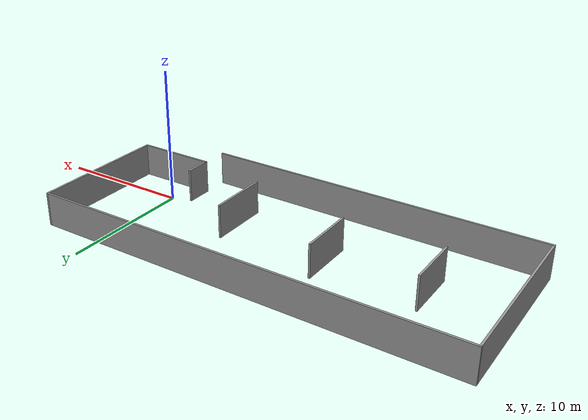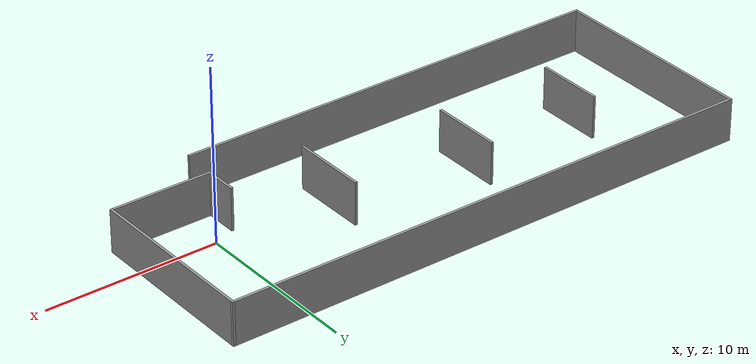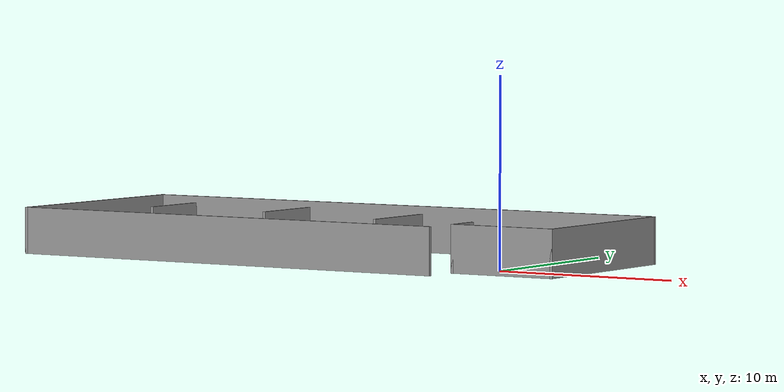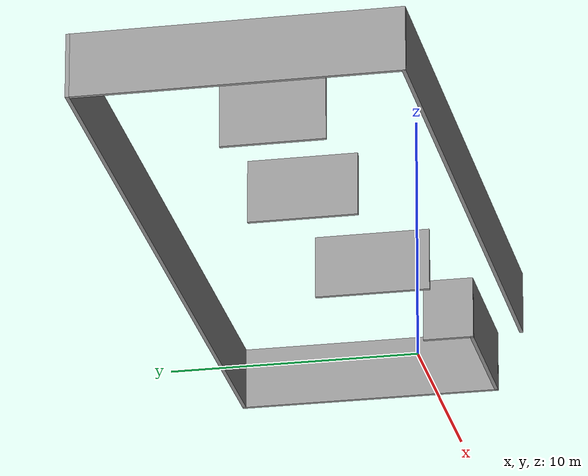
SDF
<?xml version='1.0'?>
<sdf version='1.6'>
  <model name='si_building'>
    <pose frame=''>-11.3 1.775 0 0 -0 0</pose>
    <link name='Wall_0'>
      <collision name='Wall_0_Collision'>
        <geometry>
          <box>
            <size>2 0.15 2.5</size>
          </box>
        </geometry>
        <pose frame=''>0 0 1.25 0 -0 0</pose>
      </collision>
      <visual name='Wall_0_Visual'>
        <pose frame=''>0 0 1.25 0 -0 0</pose>
        <geometry>
          <box>
            <size>2 0.15 2.5</size>
          </box>
        </geometry>
        <material>
          <script>
            <uri>file://media/materials/scripts/gazebo.material</uri>
            <name>Gazebo/Grey</name>
          </script>
          <ambient>1 1 1 1</ambient>
        </material>
        <meta>
          <layer>0</layer>
        </meta>
      </visual>
      <pose frame=''>9.95 -3.25 0 0 -0 -1.5708</pose>
    </link>
    <link name='Wall_1'>
      <collision name='Wall_1_Collision'>
        <geometry>
          <box>
            <size>6 0.15 2.5</size>
          </box>
        </geometry>
        <pose frame=''>0 0 1.25 0 -0 0</pose>
      </collision>
      <visual name='Wall_1_Visual'>
        <pose frame=''>0 0 1.25 0 -0 0</pose>
        <geometry>
          <box>
            <size>6 0.15 2.5</size>
          </box>
        </geometry>
        <material>
          <script>
            <uri>file://media/materials/scripts/gazebo.material</uri>
            <name>Gazebo/Grey</name>
          </script>
          <ambient>1 1 1 1</ambient>
        </material>
        <meta>
          <layer>0</layer>
        </meta>
      </visual>
      <pose frame=''>12.875 -4.175 0 0 -0 0</pose>
    </link>
    <link name='Wall_11'>
      <collision name='Wall_11_Collision'>
        <geometry>
          <box>
            <size>4.5 0.15 2.5</size>
          </box>
        </geometry>
        <pose frame=''>0 0 1.25 0 -0 0</pose>
      </collision>
      <visual name='Wall_11_Visual'>
        <pose frame=''>0 0 1.25 0 -0 0</pose>
        <geometry>
          <box>
            <size>4.5 0.15 2.5</size>
          </box>
        </geometry>
        <material>
          <script>
            <uri>file://media/materials/scripts/gazebo.material</uri>
            <name>Gazebo/Grey</name>
          </script>
          <ambient>1 1 1 1</ambient>
        </material>
        <meta>
          <layer>0</layer>
        </meta>
      </visual>
      <pose frame=''>4.71866 -1.18422 0 0 -0 -1.5708</pose>
    </link>
    <link name='Wall_2'>
      <collision name='Wall_2_Collision'>
        <geometry>
          <box>
            <size>10.5 0.15 2.5</size>
          </box>
        </geometry>
        <pose frame=''>0 0 1.25 0 -0 0</pose>
      </collision>
      <visual name='Wall_2_Visual'>
        <pose frame=''>0 0 1.25 0 -0 0</pose>
        <geometry>
          <box>
            <size>10.5 0.15 2.5</size>
          </box>
        </geometry>
        <material>
          <script>
            <uri>file://media/materials/scripts/gazebo.material</uri>
            <name>Gazebo/Grey</name>
          </script>
          <ambient>1 1 1 1</ambient>
        </material>
        <meta>
          <layer>0</layer>
        </meta>
      </visual>
      <pose frame=''>15.8 1 0 0 -0 1.5708</pose>
    </link>
    <link name='Wall_3'>
      <collision name='Wall_3_Collision'>
        <geometry>
          <box>
            <size>31.75 0.15 2.5</size>
          </box>
        </geometry>
        <pose frame=''>0 0 1.25 0 -0 0</pose>
      </collision>
      <visual name='Wall_3_Visual'>
        <pose frame=''>0 0 1.25 0 -0 0</pose>
        <geometry>
          <box>
            <size>31.75 0.15 2.5</size>
          </box>
        </geometry>
        <material>
          <script>
            <uri>file://media/materials/scripts/gazebo.material</uri>
            <name>Gazebo/Grey</name>
          </script>
          <ambient>1 1 1 1</ambient>
        </material>
        <meta>
          <layer>0</layer>
        </meta>
      </visual>
      <pose frame=''>0 6.175 0 0 -0 3.14159</pose>
    </link>
    <link name='Wall_4'>
      <collision name='Wall_4_Collision'>
        <geometry>
          <box>
            <size>12.5 0.15 2.5</size>
          </box>
        </geometry>
        <pose frame=''>0 0 1.25 0 -0 0</pose>
      </collision>
      <visual name='Wall_4_Visual'>
        <pose frame=''>0 0 1.25 0 -0 0</pose>
        <geometry>
          <box>
            <size>12.5 0.15 2.5</size>
          </box>
        </geometry>
        <material>
          <script>
            <uri>file://media/materials/scripts/gazebo.material</uri>
            <name>Gazebo/Grey</name>
          </script>
          <ambient>1 1 1 1</ambient>
        </material>
        <meta>
          <layer>0</layer>
        </meta>
      </visual>
      <pose frame=''>-15.8 0 0 0 -0 -1.5708</pose>
    </link>
    <link name='Wall_5'>
      <collision name='Wall_5_Collision'>
        <geometry>
          <box>
            <size>25.75 0.15 2.5</size>
          </box>
        </geometry>
        <pose frame=''>0 0 1.25 0 -0 0</pose>
      </collision>
      <visual name='Wall_5_Visual'>
        <pose frame=''>0 0 1.25 0 -0 0</pose>
        <geometry>
          <box>
            <size>25.75 0.15 2.5</size>
          </box>
        </geometry>
        <material>
          <script>
            <uri>file://media/materials/scripts/gazebo.material</uri>
            <name>Gazebo/Grey</name>
          </script>
          <ambient>1 1 1 1</ambient>
        </material>
        <meta>
          <layer>0</layer>
        </meta>
      </visual>
      <pose frame=''>-3 -6.175 0 0 -0 0</pose>
    </link>
    <link name='Wall_7'>
      <collision name='Wall_7_Collision'>
        <geometry>
          <box>
            <size>4 0.15 2.5</size>
          </box>
        </geometry>
        <pose frame=''>0 0 1.25 0 -0 0</pose>
      </collision>
      <visual name='Wall_7_Visual'>
        <pose frame=''>0 0 1.25 0 -0 0</pose>
        <geometry>
          <box>
            <size>4 0.15 2.5</size>
          </box>
        </geometry>
        <material>
          <script>
            <uri>file://media/materials/scripts/gazebo.material</uri>
            <name>Gazebo/Grey</name>
          </script>
          <ambient>1 1 1 1</ambient>
        </material>
        <meta>
          <layer>0</layer>
        </meta>
      </visual>
      <pose frame=''>-10.3471 -0.288546 0 0 -0 -1.5708</pose>
    </link>
    <link name='Wall_9'>
      <collision name='Wall_9_Collision'>
        <geometry>
          <box>
            <size>4.25 0.15 2.5</size>
          </box>
        </geometry>
        <pose frame=''>0 0 1.25 0 -0 0</pose>
      </collision>
      <visual name='Wall_9_Visual'>
        <pose frame=''>0 0 1.25 0 -0 0</pose>
        <geometry>
          <box>
            <size>4.25 0.15 2.5</size>
          </box>
        </geometry>
        <material>
          <script>
            <uri>file://media/materials/scripts/gazebo.material</uri>
            <name>Gazebo/Grey</name>
          </script>
          <ambient>1 1 1 1</ambient>
        </material>
        <meta>
          <layer>0</layer>
        </meta>
      </visual>
      <pose frame=''>-3.13706 0.016905 0 0 -0 -1.5708</pose>
    </link>
    <static>1</static>
  </model>
</sdf>
